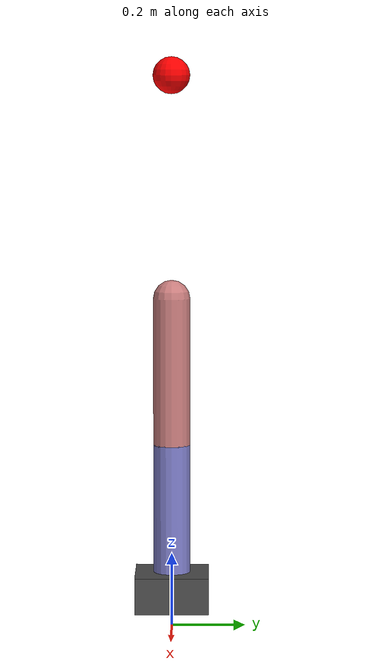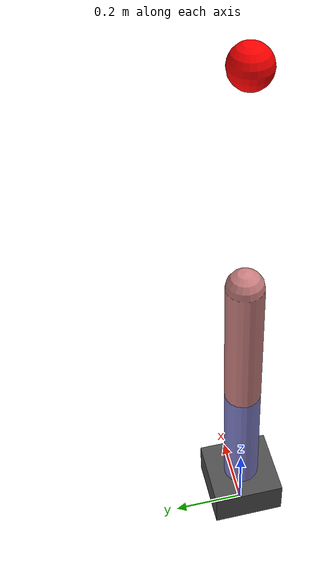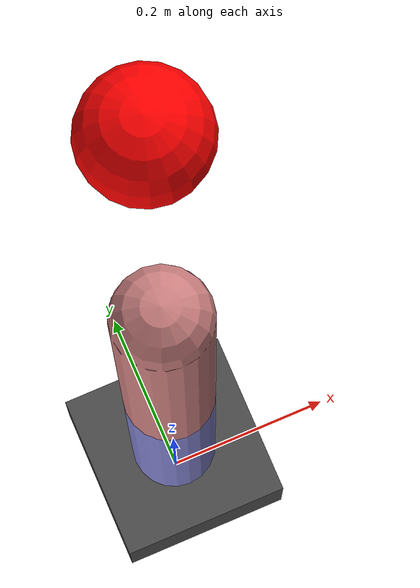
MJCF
<mujoco model="arm_robot">
  <worldbody>
    <body name="base" pos="0 0 0.1">
      <geom type="box" size="0.1 0.1 0.05" rgba="0.3 0.3 0.3 1"/>
      <joint name="joint1" type="hinge" pos="0 0 0.1" axis="0 0 1"/>
      <body name="link1" pos="0 0 0.2">
        <geom type="capsule" size="0.05 0.2" rgba="0.5 0.5 0.8 1"/>
        <joint name="joint2" type="hinge" pos="0 0 0.4" axis="0 1 0"/>
        <body name="link2" pos="0 0 0.4">
          <geom type="capsule" size="0.05 0.2" rgba="0.8 0.5 0.5 1"/>
          <joint name="joint3" type="hinge" pos="0 0 0.6" axis="1 0 0"/>
          <body name="end_effector" pos="0 0 0.8">
            <geom type="sphere" size="0.05" rgba="1 0 0 1"/>
          </body>
        </body>
      </body>
    </body>
  </worldbody>
  <actuator>
    <motor joint="joint1" ctrlrange="-1 1" ctrllimited="true"/>
    <motor joint="joint2" ctrlrange="-1 1" ctrllimited="true"/>
    <motor joint="joint3" ctrlrange="-1 1" ctrllimited="true"/>
  </actuator>
</mujoco>
